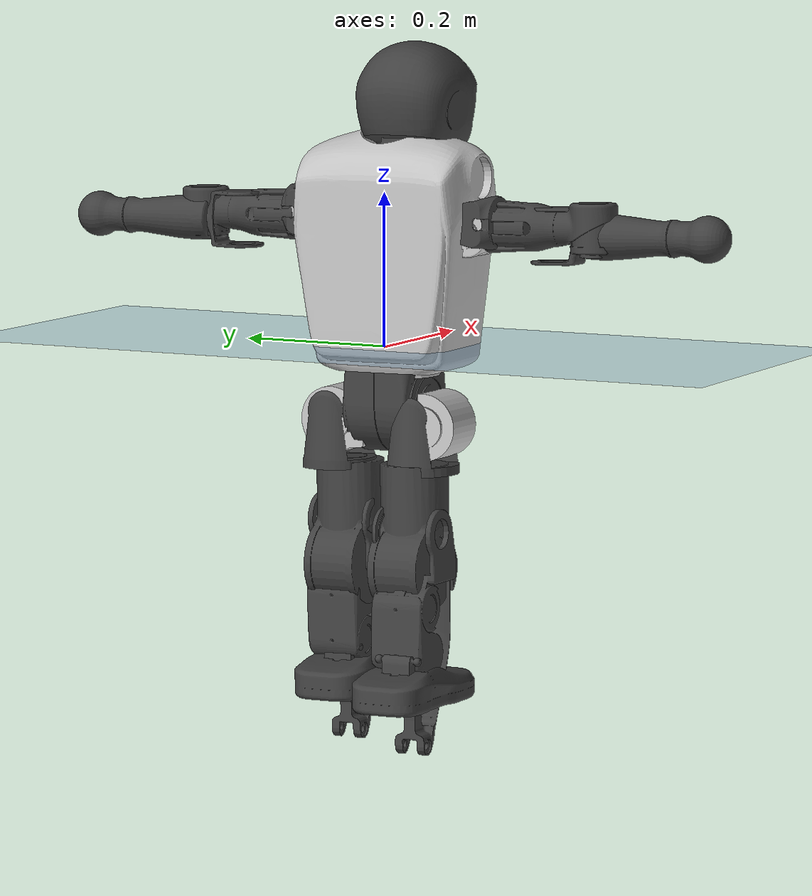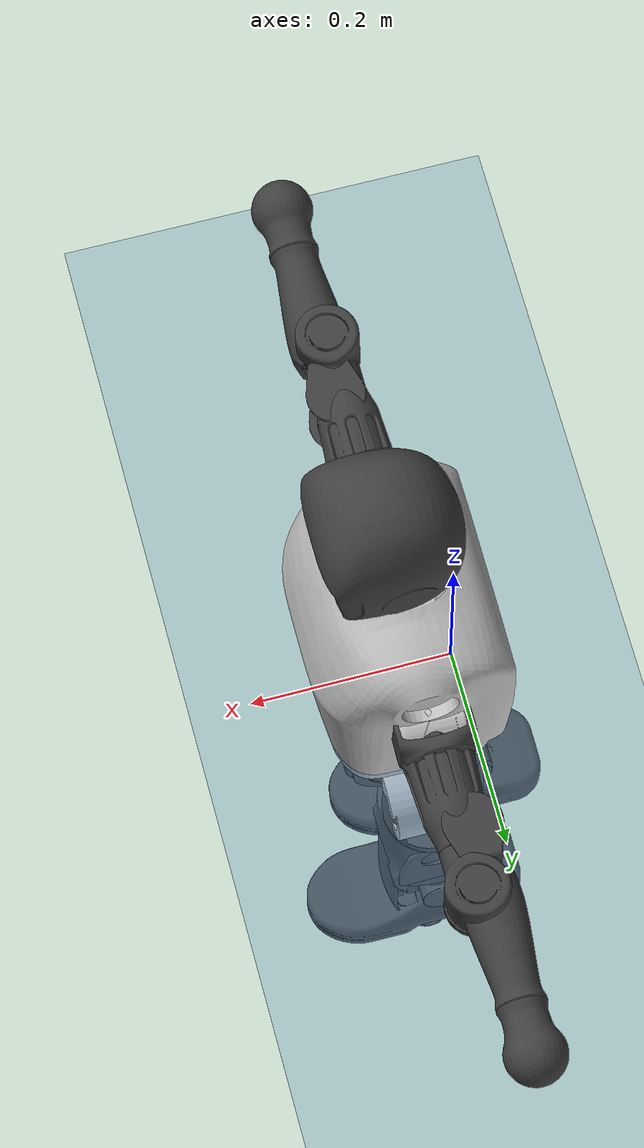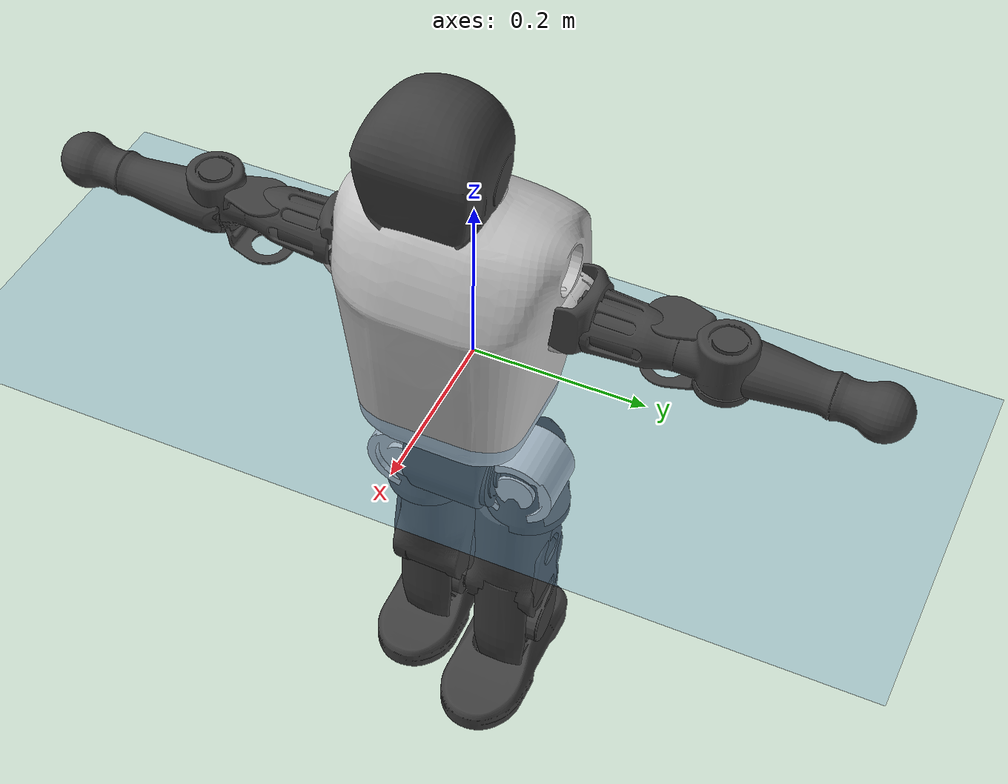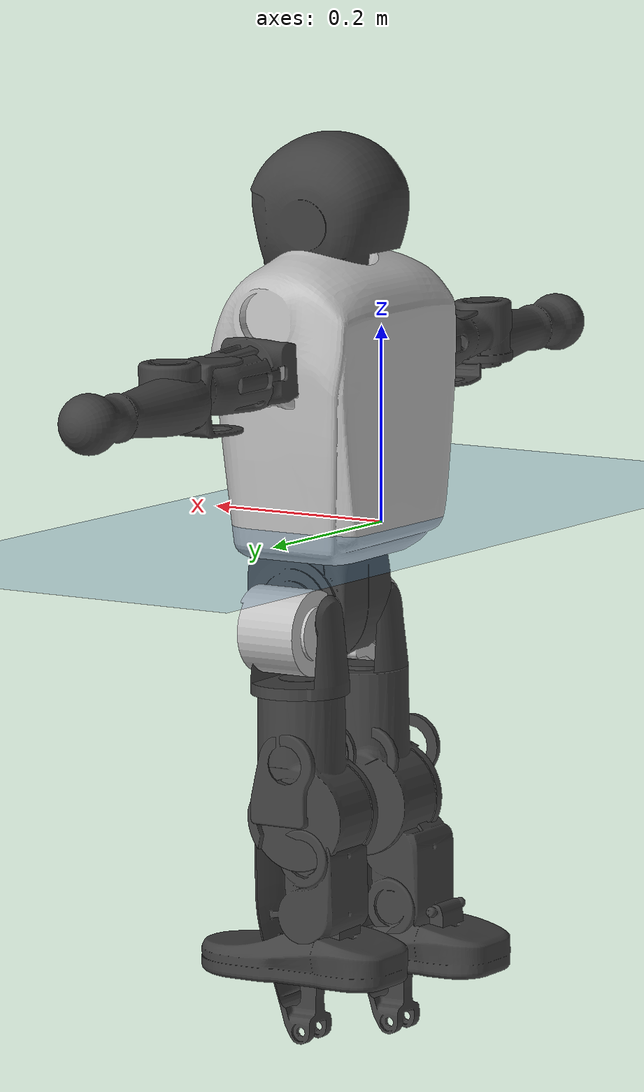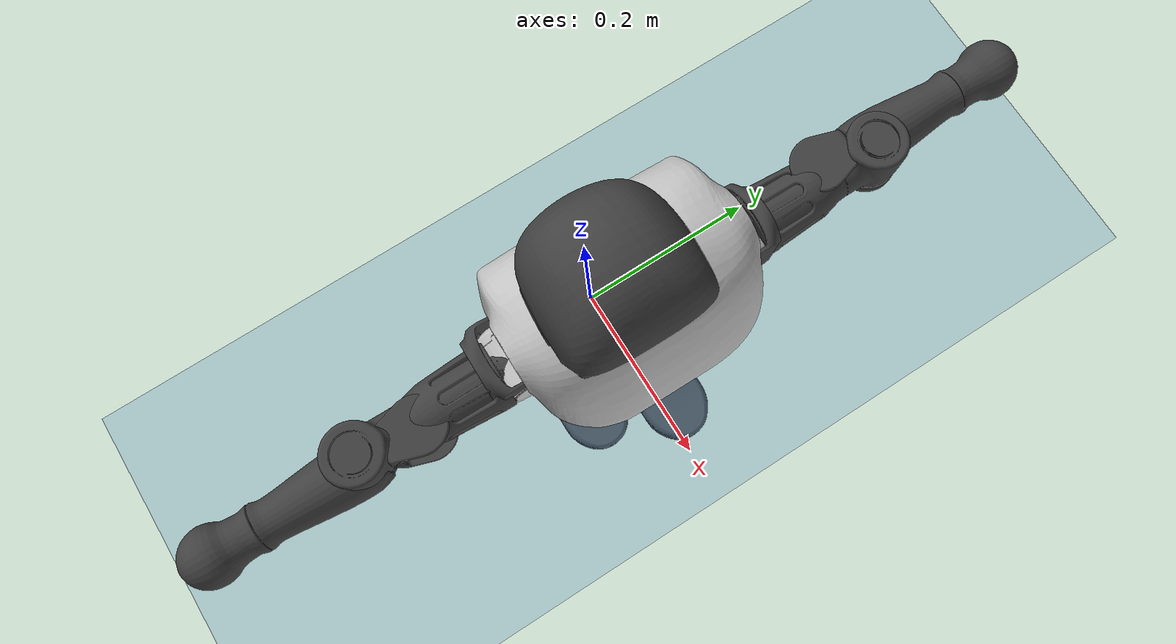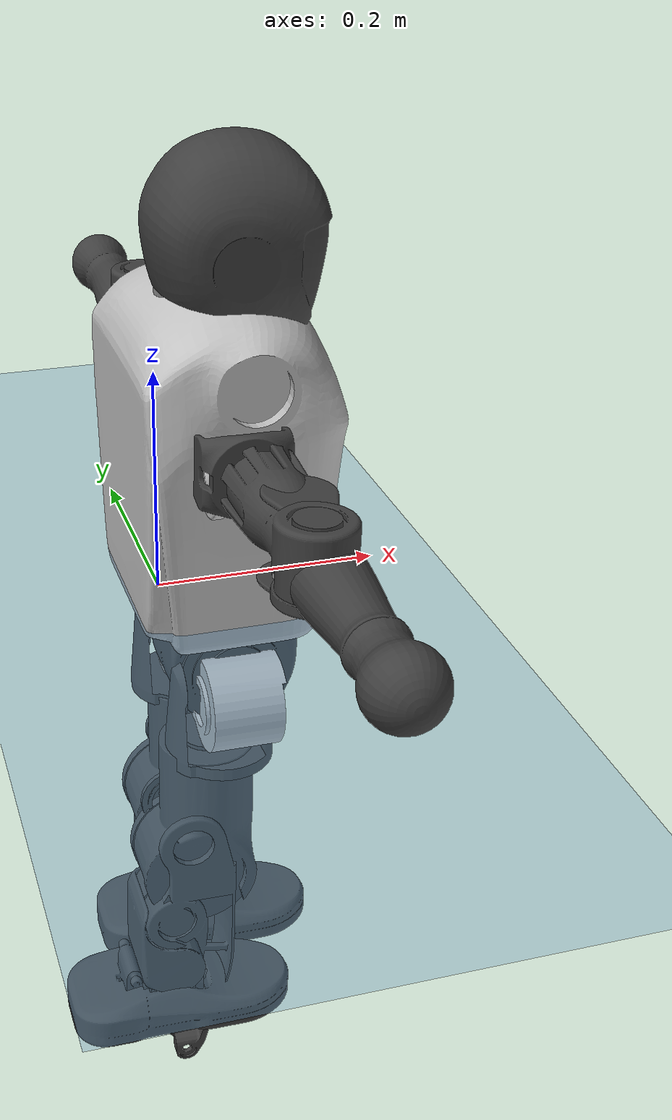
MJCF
<mujoco model="T1">
  <compiler angle="radian" assetdir="assets" balanceinertia="true" inertiafromgeom="false"/>

  <option timestep="0.005" density="1.2" viscosity="2e-05"/>

  <size nkey="1"/>

  <visual>
    <quality shadowsize="8192"/>
    <map shadowclip="0.5"/>
  </visual>

  <default>
    <default class="/">
      <joint armature="0.01" damping="0.01" frictionloss="0.1"/>
      <geom contype="0" conaffinity="0" group="1" solref="-1000 -80"/>
      <site size="0.01 0.005 0.005" group="5"/>
      <general forcelimited="true" biastype="affine" gainprm="25" biasprm="0 -25 -0.6"/>
      <default class="t1">
        <geom rgba="0.25 0.25 0.25 1"/>
        <default class="visual">
          <geom type="mesh" group="2"/>
        </default>
        <default class="collision">
          <geom group="3"/>
        </default>
        <default class="foot">
          <geom size="0.1115 0.05 0.015" type="box" condim="6" group="4" priority="1" solimp="0.015 1 0.015"/>
        </default>
        <default class="reward_collision_sphere">
          <geom group="5" rgba="1 0 0 1"/>
        </default>
      </default>
    </default>
  </default>

  <asset>
    <texture type="skybox" colorspace="auto" name="//unnamed_texture_0" builtin="gradient" rgb1="0.95 0.95 0.95" rgb2="0.95 0.95 0.95" width="100" height="600"/>
    <texture type="2d" colorspace="auto" name="texplane" builtin="checker" rgb1="0.345 0.575 0.748" rgb2="0.345 0.575 0.748" markrgb="1 1 1" width="512" height="512"/>
    <material name="MatPlane" class="/" texture="texplane" texuniform="true" texrepeat="2 2" specular="0.9"/>
    <mesh name="Trunk" class="/" file="Trunk.stl"/>
    <mesh name="H1" class="/" file="H1.stl"/>
    <mesh name="H2" class="/" file="H2.stl"/>
    <mesh name="AL1" class="/" file="AL1.stl"/>
    <mesh name="AL2" class="/" file="AL2.stl"/>
    <mesh name="AL3" class="/" file="AL3.stl"/>
    <mesh name="left_hand_link" class="/" file="left_hand_link.stl"/>
    <mesh name="AR1" class="/" file="AR1.stl"/>
    <mesh name="AR2" class="/" file="AR2.stl"/>
    <mesh name="AR3" class="/" file="AR3.stl"/>
    <mesh name="right_hand_link" class="/" file="right_hand_link.stl"/>
    <mesh name="Waist" class="/" file="Waist.stl"/>
    <mesh name="Hip_Pitch_Left" class="/" file="Hip_Pitch_Left.stl"/>
    <mesh name="Hip_Roll_Left" class="/" file="Hip_Roll_Left.stl"/>
    <mesh name="Hip_Yaw_Left" class="/" file="Hip_Yaw_Left.stl"/>
    <mesh name="Shank_Left" class="/" file="Shank_Left.stl"/>
    <mesh name="Ankle_Cross_Left" class="/" file="Ankle_Cross_Left.stl"/>
    <mesh name="left_foot_link" class="/" file="left_foot_link.stl"/>
    <mesh name="Hip_Pitch_Right" class="/" file="Hip_Pitch_Right.stl"/>
    <mesh name="Hip_Roll_Right" class="/" file="Hip_Roll_Right.stl"/>
    <mesh name="Hip_Yaw_Right" class="/" file="Hip_Yaw_Right.stl"/>
    <mesh name="Shank_Right" class="/" file="Shank_Right.stl"/>
    <mesh name="Ankle_Cross_Right" class="/" file="Ankle_Cross_Right.stl"/>
    <mesh name="right_foot_link" class="/" file="right_foot_link.stl"/>
  </asset>

  <worldbody>
    <geom name="floor" class="/" size="100 100 0.125" type="plane" group="0" material="MatPlane"/>
    <light name="toplight_shadow" class="/" pos="0 0 5" dir="0.0990148 0.0990148 -0.990148" type="directional" ambient="0.04 0.04 0.04" diffuse="0.55 0.55 0.55" specular="0.12 0.12 0.12"/>
    <light name="toplight_fill" class="/" pos="0 0 5" dir="0.0990148 0.0990148 -0.990148" type="directional" castshadow="false" ambient="0.04 0.04 0.04" diffuse="0.3 0.3 0.3" specular="0.08 0.08 0.08"/>
    <body name="trunk" childclass="t1" pos="-5.26984e-05 0.00680357 -0.000732728" quat="0.99998 -0.00613355 0.000669027 -0.00120907">
      <inertial pos="0.0579316 0.0104379 0.0769794" quat="0.999966 0.000983317 -0.00811058 0.000548159" mass="5.05552" diaginertia="0.0473718 0.00917855 0.00887995"/>
      <joint name="//unnamed_joint_0" type="free" armature="0" damping="0" frictionloss="0"/>
      <geom name="//unnamed_geom_1" class="visual" rgba="0.76 0.76 0.76 1" mesh="Trunk"/>
      <geom name="//unnamed_geom_2" class="collision" size="0.0546519 0.0728692 0.109304" pos="0.0522707 0 0.0805742" type="box"/>
      <geom name="//unnamed_geom_3" class="reward_collision_sphere" size="0.0837996" pos="0.0522707 0 0.0671452"/>
      <geom name="//unnamed_geom_4" class="reward_collision_sphere" size="0.0109304" pos="0.0522707 0.0546929 0"/>
      <geom name="//unnamed_geom_5" class="reward_collision_sphere" size="0.0109304" pos="0.0522707 -0.0546929 0"/>
      <geom name="//unnamed_geom_6" class="reward_collision_sphere" size="0.0109304" pos="0.0522707 0.0688487 0.120861"/>
      <geom name="//unnamed_geom_7" class="reward_collision_sphere" size="0.0109304" pos="0.0522707 -0.0688487 0.120861"/>
      <site name="imu" pos="-0.0452461 -0.0153909 0.0453983" size="0.00728692"/>
      <camera name="track" pos="0 -1.28689 0" quat="0.707107 0.707107 0 0" mode="trackcom"/>
      <camera name="ego_camera" pos="0.106284 0 0.28201" quat="-0.5 -0.5 0.5 0.5"/>
      <body name="H1" pos="0.0593732 -0.00651936 0.159536" quat="0.999996 0.00170654 -0.000109055 -0.00223048">
        <inertial pos="0.00686092 -0.0142777 0.0322547" quat="0.770622 -0.0254595 -0.0573192 0.634199" mass="0.178956" diaginertia="0.000127072 2.73078e-05 2.68115e-05"/>
        <joint name="AAHead_yaw" pos="0 0 0" axis="0.00189473 -0.0620935 0.998069" range="-1.49331 1.61464" armature="0.0100418" damping="0" frictionloss="0.0681455"/>
        <geom name="//unnamed_geom_8" class="visual" mesh="H1"/>
        <body name="H2" pos="-0.00889207 -0.012728 0.0446597" quat="0.999999 0.000731451 0.000627715 0.000424216">
          <inertial pos="0.00409046 -0.0110954 0.0689431" quat="0.98756 0.110409 -0.0704785 -0.0869964" mass="0.249795" diaginertia="0.000882416 0.000202745 0.000240266"/>
          <joint name="Head_pitch" pos="0 0 0" axis="0.00719961 -0.999604 0.0271992" stiffness="0.000404719" range="-1.22932 0.337644" armature="0.0118847" damping="0" frictionloss="0.0196493"/>
          <geom name="//unnamed_geom_9" class="visual" mesh="H2"/>
          <geom name="//unnamed_geom_10" class="collision" size="0.0582954" pos="0.00871178 0 0.0738597"/>
          <geom name="//unnamed_geom_11" class="reward_collision_sphere" size="0.0655823" pos="0.0174236 0 0.0671452"/>
        </body>
      </body>
      <body name="AL1" pos="0.0562184 0.0683877 0.160187" quat="1 8.23243e-06 4.32824e-05 -0.000267659">
        <inertial pos="0.0123184 0.0279017 0.00267344" quat="0.502704 0.492758 -0.506322 0.498113" mass="0.208089" diaginertia="0.000713272 0.000144626 4.60275e-05"/>
        <joint name="Left_Shoulder_Pitch" pos="0 0 0" axis="-0.0288894 0.997887 0.0581953" range="-3.27707 1.35837" armature="0.00816942" damping="0.00477191" frictionloss="0.0767514"/>
        <geom name="//unnamed_geom_12" class="visual" rgba="0.76 0.76 0.76 1" mesh="AL1"/>
        <body name="AL2" pos="-0.000971561 0.0304679 0.00911833" quat="1 0.000215669 1.37692e-05 -0.000236589">
          <inertial pos="-0.00360548 0.0313652 0.0109155" quat="0.521549 0.476212 -0.497052 0.50413" mass="0.058606" diaginertia="0.00019754 3.77879e-05 2.32876e-05"/>
          <joint name="Left_Shoulder_Roll" pos="0 0 0" axis="-0.999452 0.00882436 -0.0319012" range="-1.5789 1.7083" armature="0.00645224" damping="0" frictionloss="0.0688179"/>
          <geom name="//unnamed_geom_13" class="visual" mesh="AL2"/>
          <body name="AL3" pos="0.00191437 0.0406367 -0.00561826" quat="1 5.63777e-05 -6.48762e-07 8.36433e-05">
            <inertial pos="0.007662 0.0557919 -0.0013736" quat="0.747044 0.664202 -0.0190022 -0.0200227" mass="0.411427" diaginertia="0.0060954 0.00147415 0.000103067"/>
            <joint name="Left_Elbow_Pitch" pos="0 0 0" axis="0.00218887 -0.999998 -0.000343619" range="-2.18334 2.30866" armature="0.0072972" damping="0" frictionloss="0.0237581"/>
            <geom name="//unnamed_geom_14" class="visual" mesh="AL3"/>
            <geom name="//unnamed_geom_15" class="collision" size="0.0218608 0.0546519" pos="0 0.0321723 0" quat="0.707105 0.707108 0 0" type="cylinder"/>
            <geom name="//unnamed_geom_16" class="reward_collision_sphere" size="0.0262329"/>
            <body name="left_hand_link" pos="-0.0115343 0.0861624 -0.00843247" quat="0.999999 0.00033222 0.000861044 0.000717229">
              <inertial pos="-0.0117706 0.0794901 0.0115907" quat="0.692539 0.72134 -0.00744655 0.00156395" mass="0.125128" diaginertia="0.00408603 0.000839818 2.5432e-05"/>
              <joint name="Left_Elbow_Yaw" pos="0 0 0" axis="0.00220554 0.00310208 0.999993" stiffness="0.0310036" range="-2.40057 0.0634393" armature="0.00386698" damping="0" frictionloss="0.0715193"/>
              <geom name="//unnamed_geom_17" class="visual" mesh="left_hand_link"/>
              <geom name="//unnamed_geom_18" class="collision" size="0.0218608 0.0637606" pos="0 0.083648 0" quat="0.707105 0.707108 0 0" type="cylinder"/>
              <geom name="//unnamed_geom_19" class="reward_collision_sphere" size="0.0364346"/>
              <geom name="//unnamed_geom_20" class="reward_collision_sphere" size="0.0255042" pos="0 0.0707791 0"/>
              <geom name="//unnamed_geom_21" class="reward_collision_sphere" size="0.0255042" pos="0 0.138341 0"/>
            </body>
          </body>
        </body>
      </body>
      <body name="AR1" pos="0.0473188 -0.0701646 0.148335" quat="0.999974 -0.00687466 -0.000587177 -0.0023103">
        <inertial pos="-0.00102966 -0.0233216 -0.00593994" quat="0.506217 0.492457 -0.505093 0.496096" mass="0.174157" diaginertia="0.000645206 0.000120258 3.36758e-05"/>
        <joint name="Right_Shoulder_Pitch" pos="0 0 0" axis="0.00844545 -0.999849 -0.0151648" range="-1.38864 3.33132" armature="0.00890572" damping="0" frictionloss="0.0949504"/>
        <geom name="//unnamed_geom_22" class="visual" rgba="0.76 0.76 0.76 1" mesh="AR1"/>
        <body name="AR2" pos="-0.0049422 -0.0268742 0.0128923" quat="0.999986 -0.000517084 0.00530043 0.000422578">
          <inertial pos="0.008667 -0.0295388 0.00435839" quat="0.514691 0.505661 -0.52699 0.449089" mass="0.0681818" diaginertia="0.000223472 3.8634e-05 2.64335e-05"/>
          <joint name="Right_Shoulder_Roll" pos="0 0 0" axis="-0.999021 0.0364212 0.025111" stiffness="0.0426789" range="-1.61323 1.70227" armature="0.00749553" damping="0.0590559" frictionloss="0.0783044"/>
          <geom name="//unnamed_geom_23" class="visual" mesh="AR2"/>
          <body name="AR3" pos="0.00794134 -0.0386327 -0.00492729" quat="0.999983 0.000973777 0.00572953 0.000137181">
            <inertial pos="-0.0145542 -0.0548003 -0.005585" quat="0.709077 0.705027 0.00737435 -0.00965635" mass="0.378074" diaginertia="0.00510279 0.00124374 7.62564e-05"/>
            <joint name="Right_Elbow_Pitch" pos="0 0 0" axis="-0.0359849 0.999319 0.00814544" stiffness="0.0100073" range="-2.16607 2.56913" armature="0.00673531" damping="0" frictionloss="0.0485466"/>
            <geom name="//unnamed_geom_24" class="visual" mesh="AR3"/>
            <geom name="//unnamed_geom_25" class="collision" size="0.0218608 0.0546519" pos="0 -0.0321723 0" quat="0.707105 0.707108 0 0" type="cylinder"/>
            <geom name="//unnamed_geom_26" class="reward_collision_sphere" size="0.0262329"/>
            <body name="right_hand_link" pos="0.00664747 -0.0861278 -0.0113258" quat="0.999986 0.000235826 0.00516087 -0.0014011">
              <inertial pos="-0.0135195 -0.0751875 0.0122074" quat="0.708252 0.705939 0.00232578 -0.00481809" mass="0.141497" diaginertia="0.00571066 0.00116733 2.90715e-05"/>
              <joint name="Right_Elbow_Yaw" pos="0 0 0" axis="-0.000160469 0.00027725 1" stiffness="0.0113399" range="0.00190234 2.67199" armature="0.00887821" damping="0" frictionloss="0.0775067"/>
              <geom name="//unnamed_geom_27" class="visual" mesh="right_hand_link"/>
              <geom name="//unnamed_geom_28" class="collision" size="0.0218608 0.0637606" pos="0 -0.083648 0" quat="0.707105 0.707108 0 0" type="cylinder"/>
              <geom name="//unnamed_geom_29" class="reward_collision_sphere" size="0.0364346"/>
              <geom name="//unnamed_geom_30" class="reward_collision_sphere" size="0.0255042" pos="0 -0.0707791 0"/>
              <geom name="//unnamed_geom_31" class="reward_collision_sphere" size="0.0255042" pos="0 -0.138341 0"/>
            </body>
          </body>
        </body>
      </body>
      <body name="Waist" pos="0.0636903 0.0117901 -0.0845114" quat="0.999998 -0.00191986 0.000294162 0.00058292">
        <inertial pos="-0.00093922 -0.010366 0.006756" quat="0.989161 0.0211351 -0.144004 -0.0194228" mass="1.24916" diaginertia="0.0031181 0.000703316 0.000801622"/>
        <joint name="Waist" pos="0 0 0" axis="-0.00768882 0.0237728 0.999688" stiffness="0.0288617" range="-1.44754 1.68069" armature="0.00730166" damping="0.0742449" frictionloss="0.0447682"/>
        <geom name="//unnamed_geom_32" class="visual" mesh="Waist"/>
        <body name="Hip_Pitch_Left" pos="-0.00766944 0.0722631 0.00323781" quat="1 2.24206e-06 -0.000470348 -8.22135e-05">
          <inertial pos="0.00648572 -0.00614824 -0.000178427" quat="0.973444 0.225737 0.0366462 0.010332" mass="0.423003" diaginertia="0.000974608 0.000174089 0.000183845"/>
          <joint name="Left_Hip_Pitch" pos="0 0 0" axis="0.0194392 0.999613 -0.0199089" range="-1.84514 1.34219" armature="0.00890776" damping="0.053505" frictionloss="0.0752313"/>
          <geom name="//unnamed_geom_33" class="visual" rgba="0.76 0.76 0.76 1" mesh="Hip_Pitch_Left"/>
          <body name="Hip_Roll_Left" pos="-0.0120756 -0.00046624 -0.00516388" quat="1 -0.00022898 0.000587011 -0.000285663">
            <inertial pos="0.00402227 0.000148249 -0.0251902" quat="0.705667 -0.00432271 -0.0127981 0.708414" mass="0.120434" diaginertia="0.000650392 0.000163208 6.93901e-05"/>
            <joint name="Left_Hip_Roll" pos="0 0 0" axis="-0.999549 0.000128559 0.0300152" stiffness="0.0600661" range="-1.45321 -0.0505793" armature="0.00700265" damping="0" frictionloss="0.0684734"/>
            <geom name="//unnamed_geom_34" class="visual" mesh="Hip_Roll_Left"/>
            <geom name="//unnamed_geom_35" class="reward_collision_sphere" size="0.0400781"/>
            <body name="Hip_Yaw_Left" pos="0.00480454 -0.0131077 -0.0684306" quat="0.999999 0.00120568 0.000342993 0.000339948">
              <inertial pos="0.00110845 -0.000138152 -0.06492" quat="0.674147 -0.0376455 0.0152492 0.73748" mass="0.865944" diaginertia="0.0111463 0.00298036 0.000296603"/>
              <joint name="Left_Hip_Yaw" pos="0 0 0" axis="-0.0020611 -0.00819243 -0.999964" range="-0.970708 0.711982" armature="0.00409693" damping="0.0843569" frictionloss="0.0773201"/>
              <geom name="//unnamed_geom_36" class="visual" mesh="Hip_Yaw_Left"/>
              <geom name="//unnamed_geom_37" class="collision" size="0.0364346 0.0582954" type="cylinder"/>
              <body name="Shank_Left" pos="-0.00747816 0.00131494 -0.0780698" quat="0.999995 -0.000338016 0.000186824 0.00316327">
                <inertial pos="-0.00252025 0.000492038 -0.0725552" quat="0.997568 -0.0103862 -0.0300448 0.0620342" mass="0.629421" diaginertia="0.0165566 0.00447202 0.000309527"/>
                <joint name="Left_Knee_Pitch" pos="0 0 0" axis="0.00949138 0.999936 -0.00613996" range="-0.15275 2.35975" armature="0.00708544" damping="0.0218504" frictionloss="0.0878387"/>
                <geom name="//unnamed_geom_38" class="visual" mesh="Shank_Left"/>
                <geom name="//unnamed_geom_39" class="collision" size="0.0364346 0.0546519" pos="0 0 -0.0805742" type="cylinder"/>
                <geom name="//unnamed_geom_40" class="reward_collision_sphere" size="0.047365"/>
                <body name="Ankle_Cross_Left" pos="0.00358984 0.00212543 -0.177819" quat="0.999999 -0.00108628 -0.00115858 0.000197989">
                  <inertial pos="0.00934224 -0.0125805 -0.00497257" quat="0.445543 0.553599 0.545963 0.443783" mass="0.0321706" diaginertia="1.34738e-05 3.34809e-06 1.58281e-06"/>
                  <joint name="Left_Ankle_Pitch" pos="0 0 0" axis="0.00312808 0.998559 0.0535705" range="-0.701557 0.287719" armature="0.0114911" damping="0" frictionloss="0.0450469"/>
                  <geom name="//unnamed_geom_41" class="visual" mesh="Ankle_Cross_Left"/>
                  <body name="left_foot_link" pos="0.000740845 -0.00813885 -0.0185943" quat="0.999977 0.000745371 0.00357183 -0.00576219">
                    <inertial pos="0.0122997 0.00151727 -0.000902899" quat="0.0359682 0.619225 0.00510201 0.784373" mass="0.293429" diaginertia="0.00123043 0.000254043 0.000260401"/>
                    <joint name="Left_Ankle_Roll" pos="0 0 0" axis="-0.999997 -0.00141966 -0.00176966" stiffness="0.056665" range="-0.201482 0.694065" armature="0.00425532" damping="0" frictionloss="0.117984"/>
                    <geom name="//unnamed_geom_42" class="visual" mesh="left_foot_link"/>
                    <geom name="left_foot" class="foot" size="0.0897352 0.0481016 0.0107029" pos="0.00871178 0 -0.0100718"/>
                    <geom name="//unnamed_geom_44" class="reward_collision_sphere" size="0.037892" pos="0.00871178 0 -0.0100718"/>
                    <geom name="//unnamed_geom_45" class="reward_collision_sphere" size="0.0218608" pos="0.082762 -0.0147993 -0.0100718"/>
                    <geom name="//unnamed_geom_46" class="reward_collision_sphere" size="0.0218608" pos="-0.0609825 -0.0147993 -0.0100718"/>
                    <site name="left_foot" class="foot" pos="0.00871178 0 -0.0100718" size="0.00728692"/>
                  </body>
                </body>
              </body>
            </body>
          </body>
        </body>
        <body name="Hip_Pitch_Right" pos="-0.000749786 -0.0586394 -0.00229026" quat="0.999983 -0.00259675 0.00516611 0.000138918">
          <inertial pos="-0.00543878 0.014717 -0.0202248" quat="0.974593 -0.223689 0.0113864 -0.0016734" mass="0.391614" diaginertia="0.00084981 0.000134407 0.000154178"/>
          <joint name="Right_Hip_Pitch" pos="0 0 0" axis="-0.0014535 -0.999982 -0.00589781" stiffness="0.0023083" range="-1.46751 1.77309" armature="0.00362557" damping="0.00145604" frictionloss="0.0939991"/>
          <geom name="//unnamed_geom_47" class="visual" rgba="0.76 0.76 0.76 1" mesh="Hip_Pitch_Right"/>
          <body name="Hip_Roll_Right" pos="-0.013261 0.0112792 -0.00528474" quat="1 -0.000286979 -0.000435907 -0.000742302">
            <inertial pos="-0.0036706 -0.00524084 -0.0454419" quat="0.707259 -0.00606701 -0.00617884 0.706901" mass="0.113503" diaginertia="0.000799922 0.000132431 6.28507e-05"/>
            <joint name="Right_Hip_Roll" pos="0 0 0" axis="-0.999566 0.0291286 -0.00429868" range="-0.193748 1.84664" armature="0.00693548" damping="0.0715289" frictionloss="0.12078"/>
            <geom name="//unnamed_geom_48" class="visual" mesh="Hip_Roll_Right"/>
            <geom name="//unnamed_geom_49" class="reward_collision_sphere" size="0.0400781"/>
            <body name="Hip_Yaw_Right" pos="-0.0127621 0.00643939 -0.0629233" quat="0.999989 0.00159736 0.000165401 -0.0043017">
              <inertial pos="-0.00435332 0.00866292 -0.0686515" quat="0.746468 -0.0507803 0.01757 0.663248" mass="0.776274" diaginertia="0.0150399 0.00250877 0.000411054"/>
              <joint name="Right_Hip_Yaw" pos="0 0 0" axis="0.03875 0.0601884 -0.997435" range="-1.03535 0.986108" armature="0.0114339" damping="0.00529909" frictionloss="0.0700342"/>
              <geom name="//unnamed_geom_50" class="visual" mesh="Hip_Yaw_Right"/>
              <geom name="//unnamed_geom_51" class="collision" size="0.0364346 0.0582954" type="cylinder"/>
              <body name="Shank_Right" pos="-0.0251792 -0.00897336 -0.0864291" quat="0.999992 0.000470741 0.00374049 0.00142753">
                <inertial pos="-0.0121157 0.000320946 -0.0854646" quat="0.995708 0.0464414 -0.0314131 -0.0736311" mass="0.795993" diaginertia="0.0164206 0.00405987 0.000257544"/>
                <joint name="Right_Knee_Pitch" pos="0 0 0" axis="0.0274105 -0.99957 0.0103755" stiffness="0.0669016" range="-2.36921 -0.175028" armature="0.007682" damping="0" frictionloss="0.0739408"/>
                <geom name="//unnamed_geom_52" class="visual" mesh="Shank_Right"/>
                <geom name="//unnamed_geom_53" class="collision" size="0.0364346 0.0546519" pos="0 0 -0.0805742" type="cylinder"/>
                <geom name="//unnamed_geom_54" class="reward_collision_sphere" size="0.047365"/>
                <body name="Ankle_Cross_Right" pos="-0.00430623 -0.00753559 -0.179193" quat="0.999984 0.00426521 0.000618225 0.00371567">
                  <inertial pos="-0.00253608 -0.0103556 -0.0066424" quat="0.44327 0.550822 0.551078 0.443193" mass="0.0283801" diaginertia="1.70672e-05 2.75812e-06 1.72051e-06"/>
                  <joint name="Right_Ankle_Pitch" pos="0 0 0" axis="0.0201356 -0.998987 -0.0402553" range="-0.0561297 0.852979" armature="0.00785167" damping="0" frictionloss="0.0797973"/>
                  <geom name="//unnamed_geom_55" class="visual" mesh="Ankle_Cross_Right"/>
                  <body name="right_foot_link" pos="-0.0101492 0.000501992 -0.0131333" quat="1 8.49702e-05 0.00022356 -0.000124851">
                    <inertial pos="-0.000510331 -0.0103429 -0.00488723" quat="-0.0143237 0.599353 -0.0138733 0.800236" mass="0.186894" diaginertia="0.00122153 0.000231062 0.000243156"/>
                    <joint name="Right_Ankle_Roll" pos="0 0 0" axis="-0.999847 0.0162276 0.00650209" range="-0.394289 0.590922" armature="0.00663247" damping="0" frictionloss="0.122247"/>
                    <geom name="//unnamed_geom_56" class="visual" mesh="right_foot_link"/>
                    <geom name="right_foot" class="foot" size="0.115192 0.0308775 0.0116996" pos="0.00871178 0 -0.0100718"/>
                    <geom name="//unnamed_geom_58" class="reward_collision_sphere" size="0.0291477"/>
                    <geom name="//unnamed_geom_59" class="reward_collision_sphere" size="0.0218608" pos="0.00871178 0 -0.0100718"/>
                    <geom name="//unnamed_geom_60" class="reward_collision_sphere" size="0.0218608" pos="0.082762 0.0147993 -0.0100718"/>
                    <geom name="//unnamed_geom_61" class="reward_collision_sphere" size="0.0218608" pos="-0.0609825 0.0147993 -0.0100718"/>
                    <site name="right_foot" class="foot" pos="0.00871178 0 -0.0100718" size="0.00728692"/>
                  </body>
                </body>
              </body>
            </body>
          </body>
        </body>
      </body>
    </body>
  </worldbody>

  <contact>
    <pair class="/" geom1="floor" geom2="left_foot" name="//unnamed_contact_0"/>
    <pair class="/" geom1="floor" geom2="right_foot" name="//unnamed_contact_1"/>
  </contact>

  <actuator>
    <general name="AAHead_yaw" class="/" joint="AAHead_yaw" forcerange="-5.93107 5.93107" gainprm="24.5182" biasprm="0 -24.5182 -0.355812"/>
    <general name="Head_pitch" class="/" joint="Head_pitch" forcerange="-4.27501 4.27501" gainprm="24.5182" biasprm="0 -24.5182 -0.355812"/>
    <general name="Left_Shoulder_Pitch" class="/" joint="Left_Shoulder_Pitch" forcerange="-20.3684 20.3684" gainprm="24.5182" biasprm="0 -24.5182 -0.355812"/>
    <general name="Left_Shoulder_Roll" class="/" joint="Left_Shoulder_Roll" forcerange="-12.2845 12.2845" gainprm="24.5182" biasprm="0 -24.5182 -0.355812"/>
    <general name="Left_Elbow_Pitch" class="/" joint="Left_Elbow_Pitch" forcerange="-16.4348 16.4348" gainprm="24.5182" biasprm="0 -24.5182 -0.355812"/>
    <general name="Left_Elbow_Yaw" class="/" joint="Left_Elbow_Yaw" forcerange="-12.9243 12.9243" gainprm="24.5182" biasprm="0 -24.5182 -0.355812"/>
    <general name="Right_Shoulder_Pitch" class="/" joint="Right_Shoulder_Pitch" forcerange="-14.3922 14.3922" gainprm="24.5182" biasprm="0 -24.5182 -0.355812"/>
    <general name="Right_Shoulder_Roll" class="/" joint="Right_Shoulder_Roll" forcerange="-13.3081 13.3081" gainprm="24.5182" biasprm="0 -24.5182 -0.355812"/>
    <general name="Right_Elbow_Pitch" class="/" joint="Right_Elbow_Pitch" forcerange="-16.7745 16.7745" gainprm="24.5182" biasprm="0 -24.5182 -0.355812"/>
    <general name="Right_Elbow_Yaw" class="/" joint="Right_Elbow_Yaw" forcerange="-16.7151 16.7151" gainprm="24.5182" biasprm="0 -24.5182 -0.355812"/>
    <general name="Waist" class="/" joint="Waist" forcerange="-27.815 27.815" gainprm="24.5182" biasprm="0 -24.5182 -0.355812"/>
    <general name="Left_Hip_Pitch" class="/" joint="Left_Hip_Pitch" forcerange="-33.2714 33.2714" gainprm="24.5182" biasprm="0 -24.5182 -0.355812"/>
    <general name="Left_Hip_Roll" class="/" joint="Left_Hip_Roll" forcerange="-27.5233 27.5233" gainprm="24.5182" biasprm="0 -24.5182 -0.355812"/>
    <general name="Left_Hip_Yaw" class="/" joint="Left_Hip_Yaw" forcerange="-27.6718 27.6718" gainprm="24.5182" biasprm="0 -24.5182 -0.355812"/>
    <general name="Left_Knee_Pitch" class="/" joint="Left_Knee_Pitch" forcerange="-34.2573 34.2573" gainprm="24.5182" biasprm="0 -24.5182 -0.355812"/>
    <general name="Left_Ankle_Pitch" class="/" joint="Left_Ankle_Pitch" forcerange="-7.38193 7.38193" gainprm="24.5182" biasprm="0 -24.5182 -0.355812"/>
    <general name="Left_Ankle_Roll" class="/" joint="Left_Ankle_Roll" forcerange="-15.7955 15.7955" gainprm="24.5182" biasprm="0 -24.5182 -0.355812"/>
    <general name="Right_Hip_Pitch" class="/" joint="Right_Hip_Pitch" forcerange="-33.1121 33.1121" gainprm="24.5182" biasprm="0 -24.5182 -0.355812"/>
    <general name="Right_Hip_Roll" class="/" joint="Right_Hip_Roll" forcerange="-12.0467 12.0467" gainprm="24.5182" biasprm="0 -24.5182 -0.355812"/>
    <general name="Right_Hip_Yaw" class="/" joint="Right_Hip_Yaw" forcerange="-29.9293 29.9293" gainprm="24.5182" biasprm="0 -24.5182 -0.355812"/>
    <general name="Right_Knee_Pitch" class="/" joint="Right_Knee_Pitch" forcerange="-58.0393 58.0393" gainprm="24.5182" biasprm="0 -24.5182 -0.355812"/>
    <general name="Right_Ankle_Pitch" class="/" joint="Right_Ankle_Pitch" forcerange="-14.4909 14.4909" gainprm="24.5182" biasprm="0 -24.5182 -0.355812"/>
    <general name="Right_Ankle_Roll" class="/" joint="Right_Ankle_Roll" forcerange="-6.46572 6.46572" gainprm="24.5182" biasprm="0 -24.5182 -0.355812"/>
  </actuator>

  <sensor>
    <gyro site="imu" name="imu_angular_velocity"/>
    <velocimeter site="imu" name="imu_linear_velocity"/>
    <framelinvel objtype="site" objname="left_foot" name="left_foot_global_linear_velocity"/>
    <framelinvel objtype="site" objname="right_foot" name="right_foot_global_linear_velocity"/>
  </sensor>

  <keyframe>
    <key name="home" qpos="0 0 0.6385 1 0 0 0 0 0 0 1.4 0 -0.4 0 -1.4 0 0.4 0 -0.4 0 0 0.8 -0.4 0 0.4 0 0 -0.8 0.4 0"/>
  </keyframe>
</mujoco>
